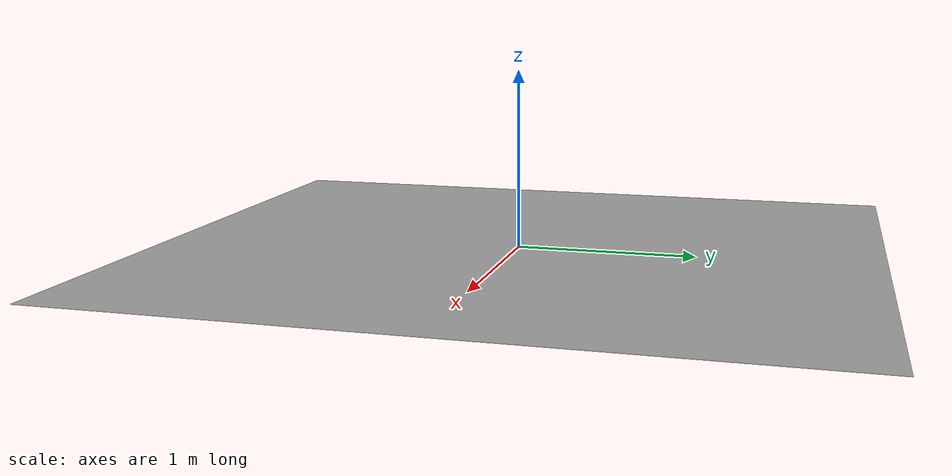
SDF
<?xml version="1.0"?>
<sdf version="1.6">
  <model name="aws_robomaker_residential_Carpet_01">
    <link name="link_Carpet_01">
      <inertial>
        <mass>8.1</mass>
        <inertia>
          <ixx>0.01</ixx>
          <iyy>0.01</iyy>
          <izz>0.01</izz>
          <ixy>0.0</ixy>
          <ixz>0.0</ixz>
          <iyz>0.0</iyz>
        </inertia>
      </inertial>
      <collision name="collision">
        <geometry>
          <mesh>
            <uri>model://aws_robomaker_residential_Carpet_01/meshes/aws_Carpet_01_collision.DAE</uri>
            <scale>1 1 0.95</scale>
          </mesh>
        </geometry>
        <surface>
          <friction>
            <ode>
              <mu>100</mu>
              <mu2>50</mu2>
            </ode>
          </friction>
          <contact>
            <ode>

            </ode>
          </contact>
        </surface>
        <pose>0 0 -0.01 0 0 0 </pose>
      </collision>
      <visual name="visual">
        <geometry>
          <mesh>
            <uri>model://aws_robomaker_residential_Carpet_01/meshes/aws_Carpet_01_visual.DAE</uri>
          </mesh>
        </geometry>
        <meta>
          <layer> 1 </layer>
        </meta>
      </visual>
    </link>
    <static>1</static>
  </model>
</sdf>
